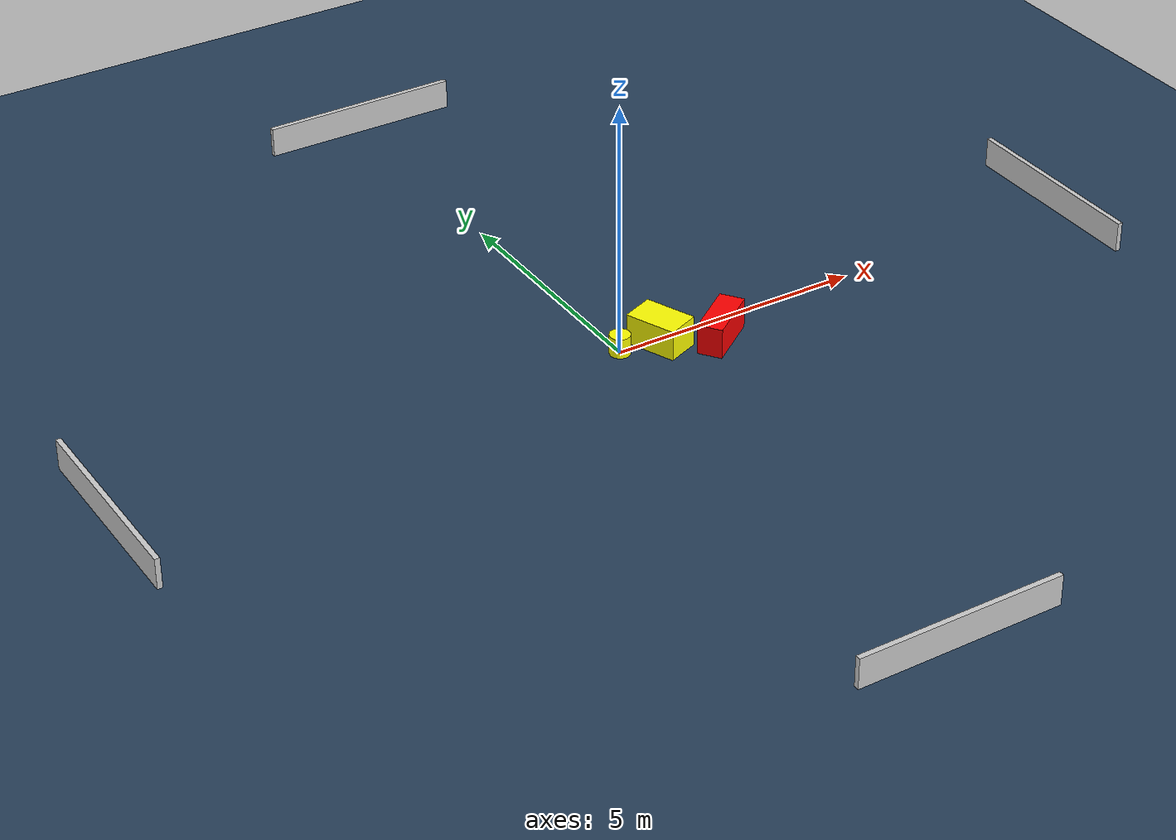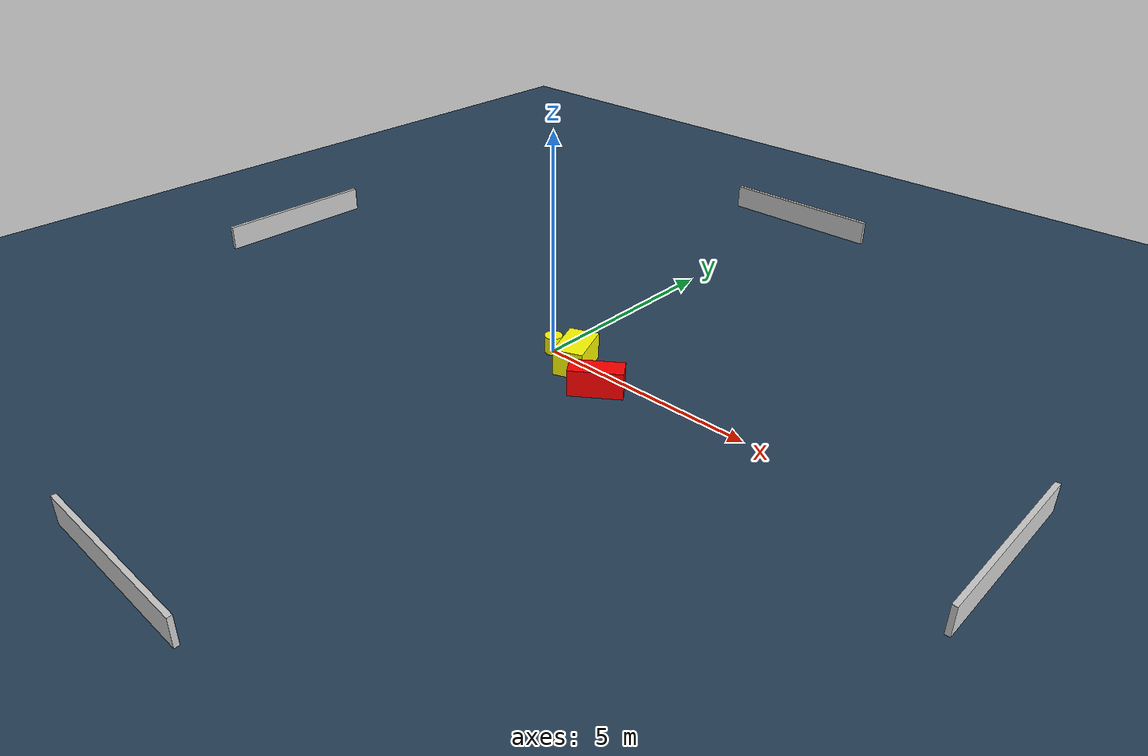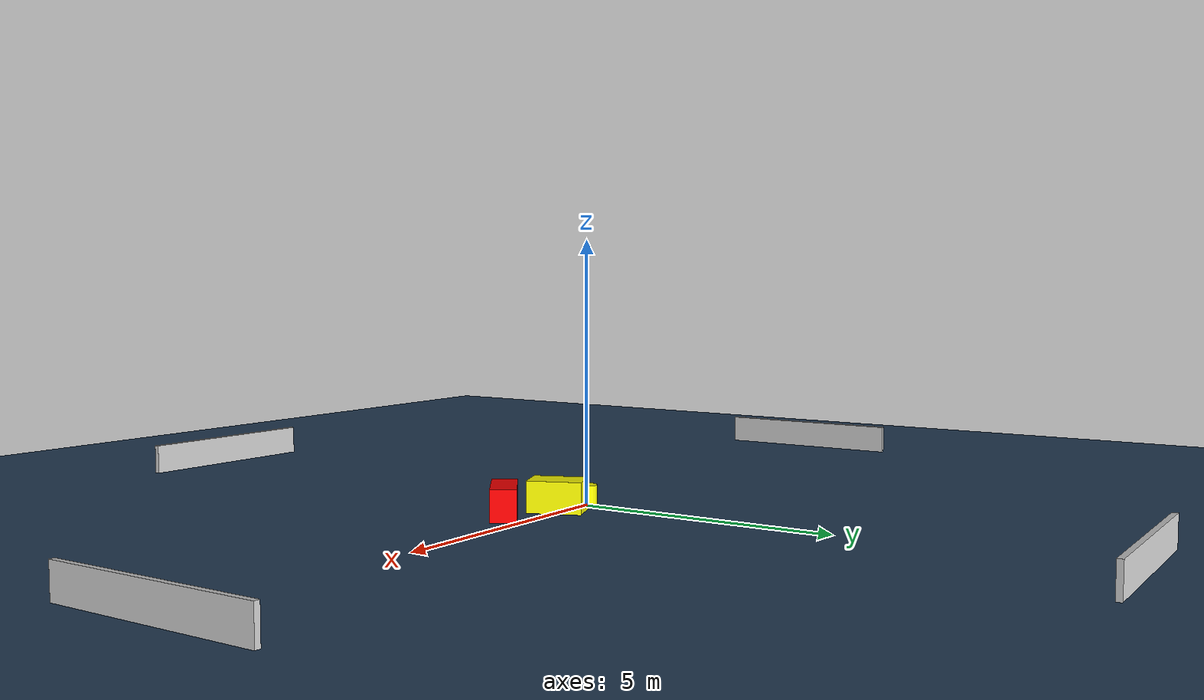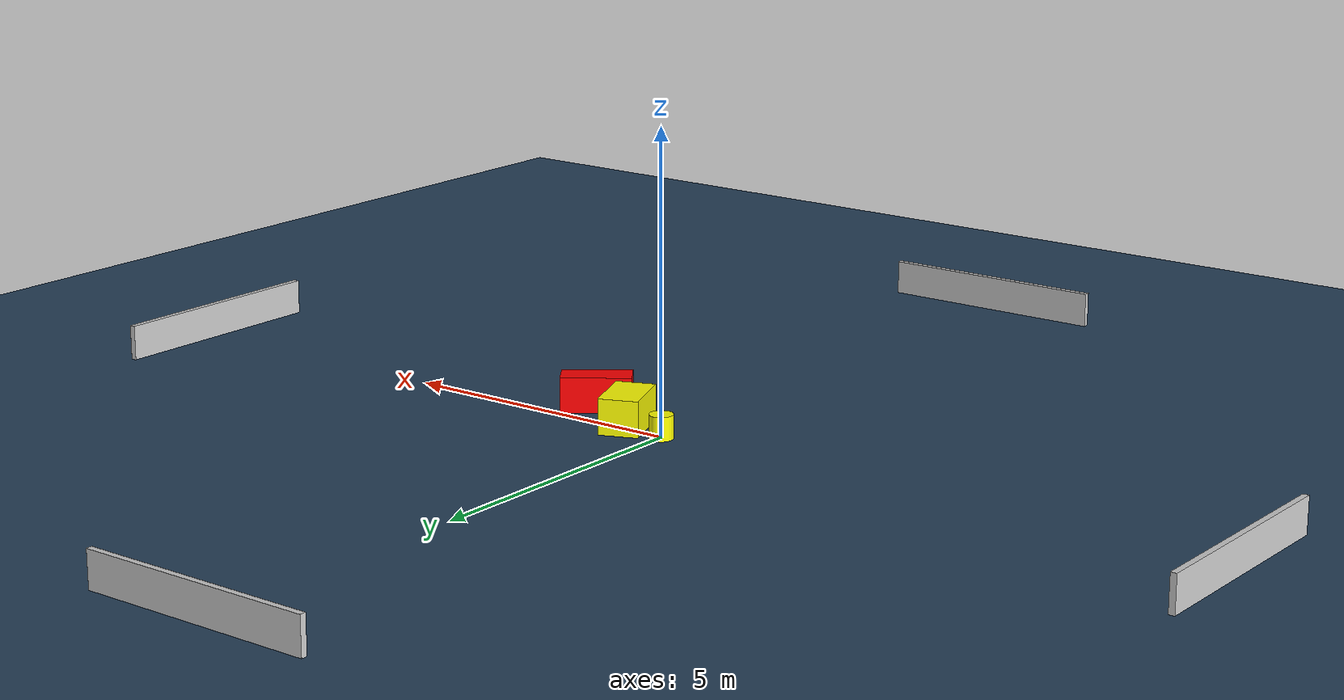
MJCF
<?xml version="1.0" ?>
<mujoco model="generated_environment">
  <option timestep="0.01" integrator="RK4" cone="elliptic"/>
  <default>
    <geom density="1"/>
  </default>
  <asset>
    <texture builtin="gradient" height="3072" name="skybox" rgb1="0.3 0.5 0.7" rgb2="0 0 0" type="skybox" width="512"/>
    <texture builtin="checker" height="300" name="groundplane" rgb1="0.2 0.3 0.4" rgb2="0.1 0.2 0.3" type="2d" width="300"/>
    <material name="groundplane" reflectance="0.2" texrepeat="5 5" texture="groundplane"/>
  </asset>
  <worldbody>
    <light dir="0 0 -1" directional="true" pos="0 0 1.5"/>
    <geom condim="3" friction="0.5 0.005 0.001" material="groundplane" name="floor" pos="0 0 0" size="0 0 0.05" type="plane"/>
    <body name="walls">
      <geom name="wall_1" condim="4" pos="-10.0 0.0 0.3" rgba="0.800000011920929 0.800000011920929 0.800000011920929 1.0" size="0.05 2.0 0.3" type="box"/>
      <geom name="wall_2" condim="4" pos="10.0 0.0 0.3" rgba="0.800000011920929 0.800000011920929 0.800000011920929 1.0" size="0.05 2.0 0.3" type="box"/>
      <geom name="wall_3" condim="4" pos="0.0 -10.0 0.3" rgba="0.800000011920929 0.800000011920929 0.800000011920929 1.0" size="2.0 0.05 0.3" type="box"/>
      <geom name="wall_4" condim="4" pos="0.0 10.0 0.3" rgba="0.800000011920929 0.800000011920929 0.800000011920929 1.0" size="2.0 0.05 0.3" type="box"/>
    </body>
    <body name="robot">
      <joint name="joint_x" type="slide" pos="0 0 0" axis="1 0 0"/>
      <joint name="joint_y" type="slide" pos="0 0 0" axis="0 1 0"/>
      <geom name="robot" type="cylinder" pos="0.0 0.0 0.2" size="0.2 0.2 0.0" mass="5.0" friction="1.0 0.005 0.0001" condim="4" rgba="1.0 1.0 0.0 1.0"/>
    </body>
    <body name="obstacle_1_movable">
      <geom name="obstacle_1_movable" condim="4" pos="0.7858093348801046 -0.12491084053656441 0.3" euler="0 0 111.99042974883429" friction="0.0 0.005 0.001" rgba="1.0 1.0 0.0 1.0" size="0.5158220996637315 0.33238117998073624 0.3" type="box" mass="0.1"/>
      <joint type="free"/>
    </body>
    <body name="obstacle_2_static">
      <geom name="obstacle_2_static" condim="4" pos="1.790293215717631 -0.6024847482517607 0.3" euler="0 0 35.92641536076305" friction="0.0 0.005 0.001" rgba="1.0 0.0 0.0 1.0" size="0.5849093276956135 0.24176140223628345 0.3" type="box"/>
    </body>
  </worldbody>
  <actuator>
    <motor name="actuator_x" joint="joint_x" gear="1" ctrlrange="-1 1"/>
    <motor name="actuator_y" joint="joint_y" gear="1" ctrlrange="-1 1"/>
  </actuator>
</mujoco>
